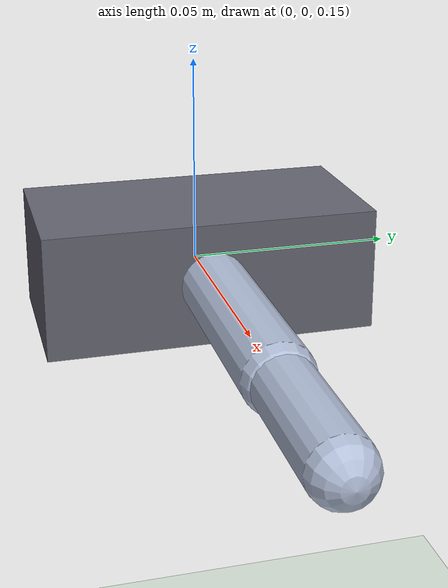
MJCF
<mujoco model="finger_v1">
  <compiler angle="degree" autolimits="true" inertiafromgeom="true"/>

  <option gravity="0 0 -9.81" timestep="0.002"/>

  <default>
    <joint type="hinge" axis="0 1 0" damping="0.1"/>
    <geom  type="capsule" rgba="0.7 0.75 0.85 1"/>
    <position kp="100" forcerange="-1.39 1.39"/>
  </default>

  <worldbody>
    <light pos="0.2 0 0.5" dir="0 0 -1"/>
    <geom name="floor" type="plane" size="0.5 0.5 0.05" rgba="0.85 0.9 0.85 1"/>

    <!-- palm: 长方体, 长边沿 y (横向), 短边沿 x (厚度).
         palm 中心在 (0, 0, 0.15), 半边长 (x=0.02, y=0.04, z=0.015).
         所以 palm 占据 x in [-0.02, +0.02], 指头从 x=+0.02 伸出. -->
    <body name="palm" pos="0 0 0.15">
      <geom name="palm_geom" type="box" size="0.02 0.04 0.015"
            rgba="0.4 0.4 0.45 1" mass="0.08"/>

      <!-- proximal phalanx: 从 palm +x 边缘 (x=0.02) 伸出.
           让 MCP=0 时指头水平朝 +x. -->
      <body name="proximal" pos="0.02 0 0">
        <joint name="mcp" range="-10 90"/>
        <geom  name="proximal_geom"
               fromto="0 0 0 0.05 0 0"
               size="0.008"
               mass="0.04"/>

        <body name="distal" pos="0.05 0 0">
          <joint name="pip" range="0 110"/>
          <geom  name="distal_geom"
                 fromto="0 0 0 0.035 0 0"
                 size="0.007"
                 mass="0.04"/>
        </body>
      </body>
    </body>
  </worldbody>

  <actuator>
    <position name="mcp_act" joint="mcp" ctrlrange="-10 90"/>
    <position name="pip_act" joint="pip" ctrlrange="0 110"/>
  </actuator>
</mujoco>
